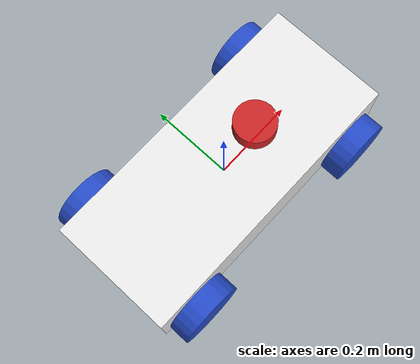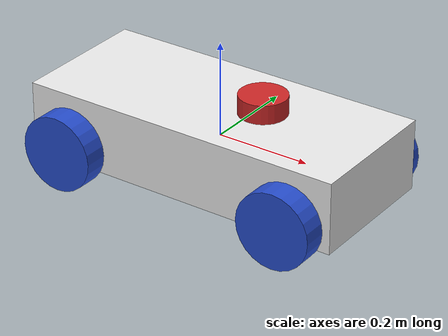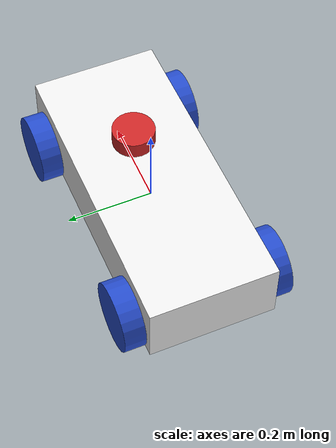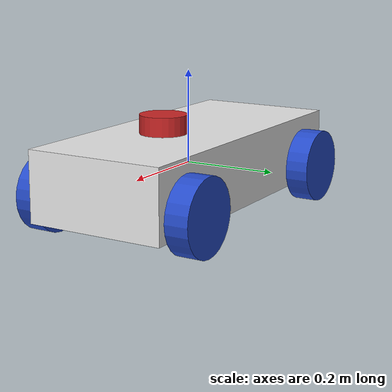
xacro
<?xml version="1.0"?>
<robot xmlns:xacro="http://www.ros.org/wiki/xacro" name="robot">

    <!-- Example link Ack-->
    <xacro:include filename="properties.xacro"/>
    <xacro:include filename="robot_core_ack.xacro"/>
    <xacro:include filename="inertial_macros.xacro"/>
    <!--xacro:include filename="gazebo_control.xacro"/-->
    <xacro:include filename="lidar.xacro"/>
    <xacro:include filename="ros2_control_ack.xacro"/>

    <!--xacro:include filename="gazebo_control.xacro"/ -->

</robot>

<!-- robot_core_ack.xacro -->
<robot xmlns:xacro="http://www.ros.org/wiki/xacro">

    <!-- Body dimensiones -->
    <xacro:include filename="inertial_macros.xacro"/>
    <xacro:property name="body_link_x_dim" value="0.7"/>
    <xacro:property name="body_link_y_dim" value="0.3"/>
    <xacro:property name="body_link_z_dim" value="0.15"/>
    <!-- wheel dimensiones -->
    <xacro:include filename="inertial_macros.xacro"/>
    <xacro:property name="wheel_link_radius" value="0.08"/>
    <xacro:property name="wheel_link_length" value="0.05"/>
    <xacro:property name="wheel_link_z_location" value="-0.035"/>
    <!-- Example link -->
        <link name="base_link">

    </link>

    <joint name="base_joint" type="fixed">
        <parent link="base_link"/>
        <child link="chassis"/>
    </joint>
    <!-- chassis link -->
    <link name="chassis">
        <visual>
            <origin xyz="0 0 0"/>
            <geometry>
                <box size="${body_link_x_dim} ${body_link_y_dim} ${body_link_z_dim}"/>
            </geometry>
            <material name="white"/>
        </visual>
        <collision>
            <origin xyz="0 0 0"/>
            <geometry>
                <box size="${body_link_x_dim} ${body_link_y_dim} ${body_link_z_dim}"/>
            </geometry>
        </collision>
        <xacro:inertial_box mass="0.5" x="${body_link_x_dim}" y="${body_link_y_dim}" z="${body_link_z_dim}">
            <origin xyz="0 0 0" rpy="0 0 0"/>
        </xacro:inertial_box>
    </link>

    <joint name="left_steering_joint" type="revolute">
        <parent link="base_link"/>
        <child link="left_steering_link"/>
        <origin xyz="${body_link_x_dim/2-1.2*wheel_link_radius} ${body_link_y_dim/2} ${wheel_link_z_location}" rpy="0 0 0"/>
        <axis xyz="0 0 1"/>
        <limit effort="100" lower="-0.41" upper="0.41" velocity="0.5"/>

    </joint>

    <link name="left_steering_link">
        <visual>
            <origin xyz="0 0 0" rpy="${pi/2} 0 0"/>
            <geometry>
                <cylinder radius="${wheel_link_radius*0.4}" length="0.01"/>
            </geometry>
            <material name="blue"/>
        </visual>
        <collision>
            <origin xyz="0 0 0" rpy="${pi/2} 0 0"/>
            <geometry>
                <sphere radius="${wheel_link_radius*0.4}"/>
            </geometry>
        </collision>
        <xacro:inertial_cylinder mass="0.1" length="0.01" radius="${wheel_link_radius*0.4}">
            <origin xyz="0 0 0" rpy="${pi/2} 0 0"/>
        </xacro:inertial_cylinder>
    </link>

    <joint name="right_steering_joint" type="revolute">
        <parent link="base_link"/>
        <child link="right_steering_link"/>
        <origin xyz="${body_link_x_dim/2-1.2*wheel_link_radius} ${-body_link_y_dim/2} ${wheel_link_z_location}" rpy="0 0 0"/>
        <axis xyz="0 0 1"/>
        <limit effort="100" lower="-0.41" upper="0.41" velocity="0.5"/>

    </joint>

    <link name="right_steering_link">
    <visual>
            <origin xyz="0 0 0" rpy="${pi/2} 0 0"/>
            <geometry>
                <cylinder radius="${wheel_link_radius*0.4}" length="0.01"/>
            </geometry>
            <material name="blue"/>
        </visual>
        <collision>
            <origin xyz="0 0 0" rpy="${pi/2} 0 0"/>
            <geometry>
                <sphere radius="${wheel_link_radius*0.4}"/>
            </geometry>
        </collision>
        <xacro:inertial_cylinder mass="0.1" length="0.01" radius="${wheel_link_radius*0.4}">
            <origin xyz="0 0 0" rpy="${pi/2} 0 0"/>
        </xacro:inertial_cylinder>
    </link>

    <!-- rear_right_wheel joint -->
    <joint name="rear_right_wheel_joint" type="continuous">
        <parent link="base_link"/>
        <child link="rear_right_wheel"/>
        <origin xyz="${-body_link_x_dim/2+1.2*wheel_link_radius} ${-body_link_y_dim/2-wheel_link_length/2} ${wheel_link_z_location}" rpy="0 0 0"/>
        <axis xyz="0 1 0"/>

    </joint>

    <!-- rear_right_wheel link -->
    <link name="rear_right_wheel">
        <visual>
            <origin xyz="0 0 0" rpy="${pi/2} 0 0"/>
            <geometry>
                <cylinder radius="${wheel_link_radius}" length="${wheel_link_length}"/>
            </geometry>
            <material name="blue"/>
        </visual>
        <collision>
            <origin xyz="0 0 0" rpy="${pi/2} 0 0"/>
            <geometry>
                <sphere radius="${wheel_link_radius}"/>
            </geometry>
        </collision>
        <xacro:inertial_cylinder mass="0.1" length="${wheel_link_length}" radius="${wheel_link_radius}">
            <origin xyz="0 0 0" rpy="${pi/2} 0 0"/>
        </xacro:inertial_cylinder>
    </link>

    <!-- rear_left_wheel -->
    <joint name="rear_left_wheel_joint" type="continuous">
        <parent link="base_link"/>
        <child link="rear_left_wheel"/>
        <origin xyz="${-body_link_x_dim/2+1.2*wheel_link_radius} ${body_link_y_dim/2+wheel_link_length/2} ${wheel_link_z_location}" rpy="0 0 0"/>
        <axis xyz="0 1 0"/>

    </joint>

    <!-- rear_left_wheel link -->
    <link name="rear_left_wheel">
        <visual>
            <origin xyz="0 0 0" rpy="${pi/2} 0 0"/>
            <geometry>
                <cylinder radius="${wheel_link_radius}" length="${wheel_link_length}"/>
            </geometry>
            <material name="blue"/>
        </visual>
        <collision>
            <origin xyz="0 0 0" rpy="${pi/2} 0 0"/>
            <geometry>
                <sphere radius="${wheel_link_radius}"/>
            </geometry>
        </collision>
        <xacro:inertial_cylinder mass="0.1" length="${wheel_link_length}" radius="${wheel_link_radius}">
            <origin xyz="0 0 0" rpy="${pi/2} 0 0"/>
        </xacro:inertial_cylinder>
    </link>

    <!-- front_right_wheeljoint -->
    <joint name="front_right_wheel_joint" type="continuous">
        <parent link="right_steering_link"/>
        <child link="front_right_wheel"/>
        <origin xyz="0 ${-wheel_link_length/2} 0" rpy="0 0 0"/>
        <axis xyz="0 1 0"/>

    </joint>
    <!-- rear left wheel link -->
    <link name="front_right_wheel">
        <visual>
            <origin xyz="0 0 0" rpy="${pi/2} 0 0"/>
            <geometry>
                <cylinder radius="${wheel_link_radius}" length="${wheel_link_length}"/>
            </geometry>
            <material name="blue"/>
        </visual>
        <collision>
            <origin xyz="0 0 0" rpy="${pi/2} 0 0"/>
            <geometry>
                <sphere radius="${wheel_link_radius}"/>
            </geometry>
        </collision>
        <xacro:inertial_cylinder mass="0.1" length="${wheel_link_length}" radius="${wheel_link_radius}">
            <origin xyz="0 0 0" rpy="${pi/2} 0 0"/>
        </xacro:inertial_cylinder>
    </link>

    <!-- front_left_wheel joint -->
    <joint name="front_left_wheel_joint" type="continuous">
        <parent link="left_steering_link"/>
        <child link="front_left_wheel"/>
        <origin xyz="0 ${wheel_link_length/2} 0" rpy="0 0 0"/>
        <axis xyz="0 1 0"/>

    </joint>

    <!-- front_left_wheel_link -->
    <link name="front_left_wheel">
        <visual>
            <origin xyz="0 0 0" rpy="${pi/2} 0 0"/>
            <geometry>
                <cylinder radius="${wheel_link_radius}" length="${wheel_link_length}"/>
            </geometry>
            <material name="blue"/>
        </visual>
        <collision>
            <origin xyz="0 0 0" rpy="${pi/2} 0 0"/>
            <geometry>
                <sphere radius="${wheel_link_radius}"/>
            </geometry>
        </collision>
        <xacro:inertial_cylinder mass="0.1" length="${wheel_link_length}" radius="${wheel_link_radius}">
            <origin xyz="0 0 0" rpy="${pi/2} 0 0"/>
        </xacro:inertial_cylinder>
    </link>

    <gazebo reference="chassis">
        <material>Gazebo/White</material>
        <mu1 value = "0.3" />
        <mu2 value = "0.3" />
    </gazebo>

    <gazebo reference="rear_left_wheel">
        <material>Gazebo/Blue</material>
        <mu1 value = "0.3" />
        <mu2 value = "0.3" />
    </gazebo>

    <gazebo reference="rear_right_wheel">
        <material>Gazebo/Blue</material>
         <mu1 value = "0.3" />
        <mu2 value = "0.3" />
    </gazebo>

     <gazebo reference="front_left_wheel">
        <material>Gazebo/Blue</material>
         <mu1 value = "0.3" />
        <mu2 value = "0.3" />
    </gazebo>

    <gazebo reference="front_right_wheel">
        <material>Gazebo/Blue</material>
         <mu1 value = "0.3" />
        <mu2 value = "0.3" />
    </gazebo>

    <gazebo reference="right_steering_link">
        <material>Gazebo/Blue</material>
         <mu1 value = "0.2" />
        <mu2 value = "0.2" />
    </gazebo>

    <gazebo reference="left_steering_link">
        <material>Gazebo/Blue</material>
         <mu1 value = "0.2" />
        <mu2 value = "0.2" />
    </gazebo>

    <gazebo reference="steering">
        <material>Gazebo/White</material>
         <mu1 value = "0.2" />
        <mu2 value = "0.2" />
    </gazebo>

</robot>

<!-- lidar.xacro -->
<robot xmlns:xacro="http://www.ros.org/wiki/xacro">

    <!-- lidar joint -->
    <joint name="laser_joint" type="fixed">
        <parent link="chassis"/>
        <child link="laser_frame"/>
        <origin xyz="0.1 0 0.1" rpy="0 0 0"/>
    </joint>

    <!-- laser_frame -->
    <link name="laser_frame">
        <visual>
            <geometry>
                <cylinder radius="0.05" length="0.04"/>
            </geometry>
            <material name="red"/>
        </visual>
        <collision>
            <geometry>
                <cylinder radius="0.05" length="0.04"/>
            </geometry>
        </collision>
        <xacro:inertial_cylinder mass="0.1" length="0.04" radius="0.05">
            <origin xyz="0 0 0" rpy="0 0 0"/>
        </xacro:inertial_cylinder>
    </link>

    <gazebo reference="laser_frame">
        <material>Gazebo/Red</material>
        <sensor name="laser" type="ray">
            <pose>0 0 0 0 0 0</pose>
            <visualize>true</visualize>
            <update_rate>10</update_rate>
            <ray>
                <scan>
                    <horizontal>
												<!--samples> is the number of simulated lidar rays to generate per complete laser sweep cycle.-->
                        <samples>360</samples>
												<!--resolution>: this number is multiplied by samples to determine the number range data points.-->
                        <resolution>1</resolution>
							          <min_angle>-3.14</min_angle>
                        <max_angle>3.14</max_angle>
                    </horizontal>
                </scan>
                <range>
                    <min>0.3</min>
                    <max>12</max>
                    <resolution>0.01</resolution>
                </range>
            </ray>
            <plugin name="laser_controller" filename="libgazebo_ros_ray_sensor.so">
                <ros>
                    <remapping>~/out:=scan</remapping>
                </ros>
                <output_type>sensor_msgs/LaserScan</output_type>
                <frame_name>laser_frame</frame_name>
            </plugin>
        </sensor>
    </gazebo>

</robot>
